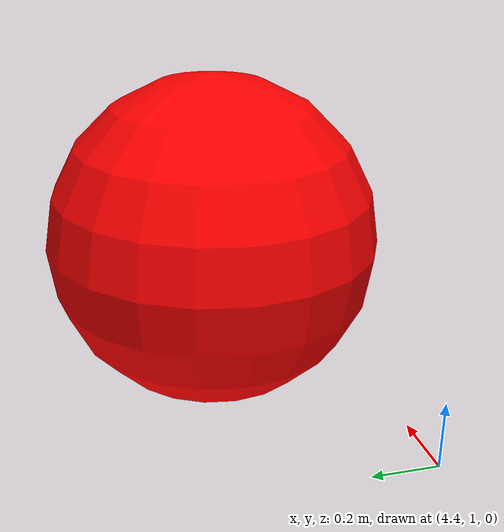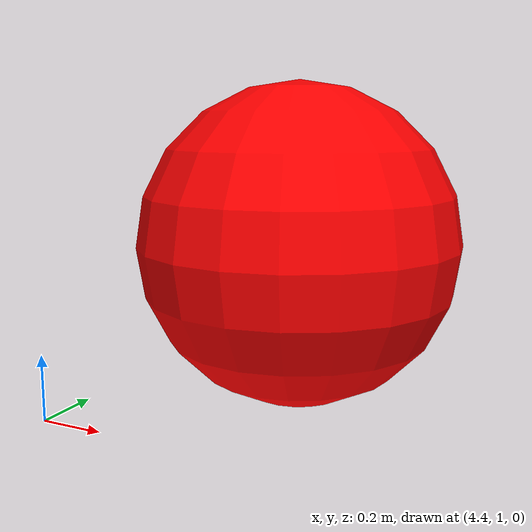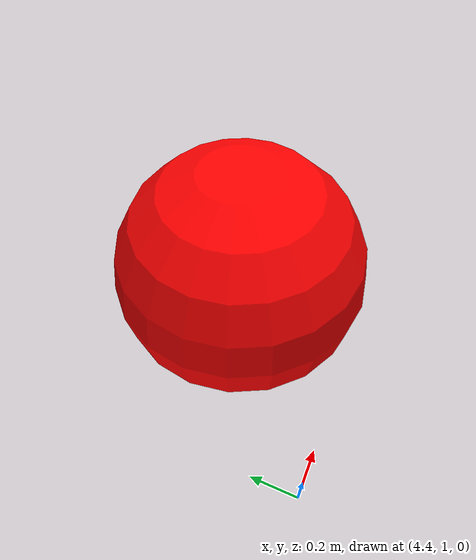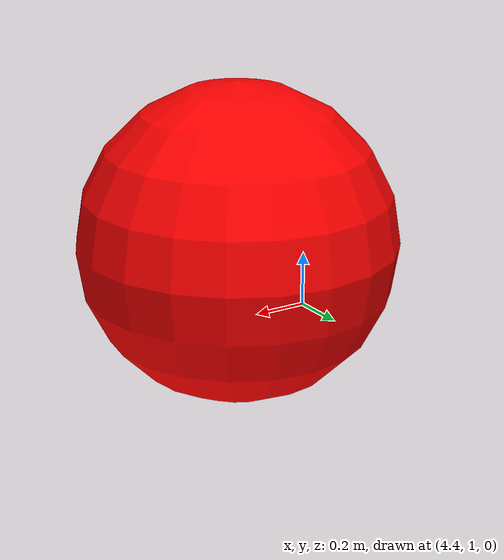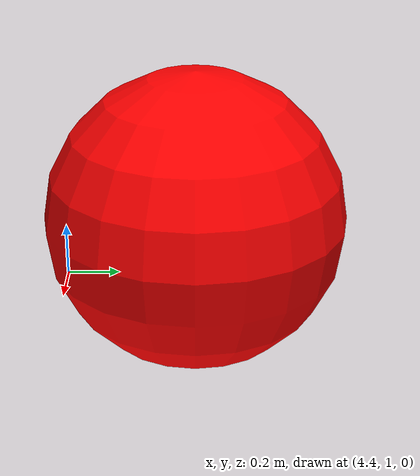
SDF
<?xml version="1.0" ?>
<sdf version="1.6">
  <model name="sphere">
    <pose>5 1.5 0.5 0 0 0</pose>
    <link name="link">
      <collision name="collision">
        <geometry>
          <sphere>
            <radius>0.5</radius>
          </sphere>
        </geometry>
      </collision>
      <visual name="visual">
        <geometry>
          <sphere>
            <radius>0.5</radius>
          </sphere>
        </geometry>
        <material>
          <ambient>1 0 0 1</ambient>
          <diffuse>1 0 0 1</diffuse>
        </material>
      </visual>
    </link>
  </model>
</sdf>
